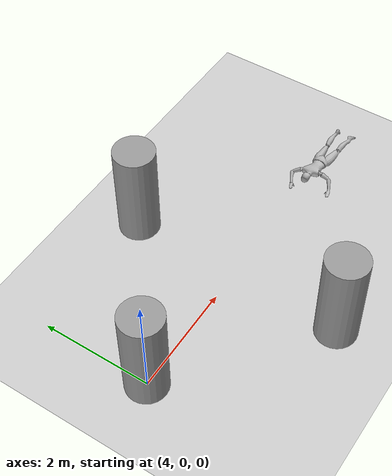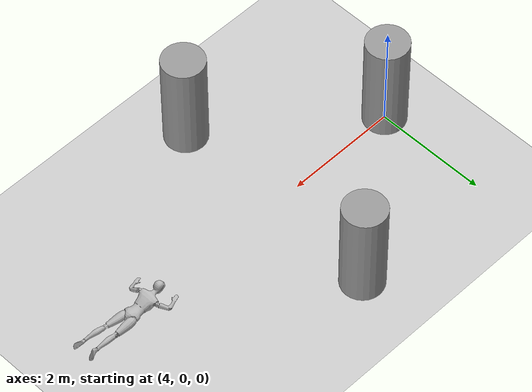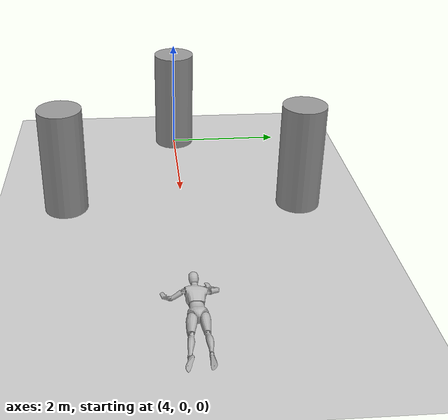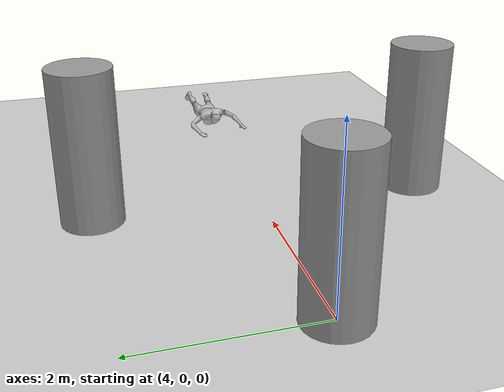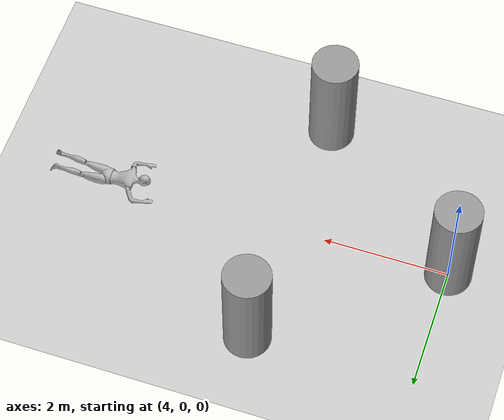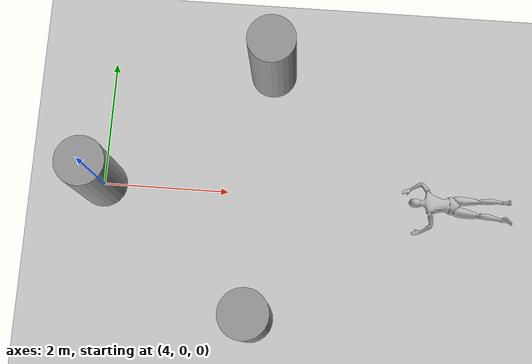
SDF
<sdf version="1.6">
 <world name="default">
  <light name="sun" type="directional">
   <pose>0 0 10 0 -0 0</pose>
   <diffuse>0.8 0.8 0.8 1</diffuse>
   <specular>0.2 0.2 0.2 1</specular>
   <attenuation>
    <range>1000</range>
    <constant>0.9</constant>
    <linear>0.01</linear>
    <quadratic>0.001</quadratic>
   </attenuation>
   <direction>-0.5 0.1 -0.9</direction>
  </light>
  <model name="ground_plane">
   <static>1</static>
   <link name="link">
    <collision name="collision">
     <geometry><plane><normal>0 0 1</normal><size>100 100</size></plane></geometry>
     <surface>
      <contact><collide_bitmask>65535</collide_bitmask></contact>
      <friction><ode><mu>100</mu><mu2>50</mu2></ode></friction>
     </surface>
    </collision>
    <visual name="visual">
     <cast_shadows>0</cast_shadows>
     <geometry><plane><normal>0 0 1</normal><size>100 100</size></plane></geometry>
     <material>
      <script><uri>file://media/materials/scripts/gazebo.material</uri><name>Gazebo/Grey</name></script>
     </material>
    </visual>
   </link>
  </model>
  <gravity>0 0 -9.8</gravity>
  <magnetic_field>6e-06 2.3e-05 -4.2e-05</magnetic_field>
  <atmosphere type="adiabatic"/>
  <physics name="default_physics" default="0" type="ode">
   <max_step_size>0.001</max_step_size>
   <real_time_factor>1</real_time_factor>
   <real_time_update_rate>1000</real_time_update_rate>
  </physics>
  <scene><ambient>0.4 0.4 0.4 1</ambient><background>0.7 0.7 0.7 1</background><shadows>1</shadows></scene>
  <audio><device>default</device></audio>
  <spherical_coordinates>
   <surface_model>EARTH_WGS84</surface_model>
   <latitude_deg>0</latitude_deg>
   <longitude_deg>0</longitude_deg>
   <elevation>0</elevation>
   <heading_deg>0</heading_deg>
  </spherical_coordinates>
  <model name="Survivor Female">
   <static>1</static>
   <link name="link">
    <collision name="collision">
     <geometry><mesh><uri>model://Survivor Female/meshes/Survivor Female.dae</uri></mesh></geometry>
    </collision>
    <visual name="visual">
     <geometry><mesh><uri>model://Survivor Female/meshes/Survivor Female.dae</uri></mesh></geometry>
    </visual>
   </link>
   <pose>9.7 0 0 0 0 -1.5561</pose>
  </model>
  <model name="unit_cylinder_clone_0_clone_clone">
   <pose>6.60387 2 0.920834 0 0 -0.000766</pose>
   <link name="link">
    <inertial>
     <mass>1</mass>
     <inertia><ixx>0.145833</ixx><ixy>0</ixy><ixz>0</ixz><iyy>0.145833</iyy><iyz>0</iyz><izz>0.125</izz></inertia>
    </inertial>
    <collision name="collision">
     <geometry><cylinder><radius>0.369487</radius><length>1.84167</length></cylinder></geometry>
    </collision>
    <visual name="visual">
     <geometry><cylinder><radius>0.369487</radius><length>1.84167</length></cylinder></geometry>
     <material>
      <script><name>Gazebo/Grey</name><uri>file://media/materials/scripts/gazebo.material</uri></script>
     </material>
    </visual>
   </link>
  </model>
  <model name="unit_cylinder_clone_0_clone_clone_0">
   <pose>6.5 -2 0.920833 0 0 -0.000794</pose>
   <link name="link">
    <inertial>
     <mass>1</mass>
     <inertia><ixx>0.145833</ixx><ixy>0</ixy><ixz>0</ixz><iyy>0.145833</iyy><iyz>0</iyz><izz>0.125</izz></inertia>
    </inertial>
    <collision name="collision">
     <geometry><cylinder><radius>0.369487</radius><length>1.84167</length></cylinder></geometry>
    </collision>
    <visual name="visual">
     <geometry><cylinder><radius>0.369487</radius><length>1.84167</length></cylinder></geometry>
     <material>
      <script><name>Gazebo/Grey</name><uri>file://media/materials/scripts/gazebo.material</uri></script>
     </material>
    </visual>
   </link>
  </model>
  <model name="unit_cylinder_clone_0_clone_clone_0_clone">
   <pose>4 0 0.920835 0 0 -0.000804</pose>
   <link name="link">
    <inertial>
     <mass>1</mass>
     <inertia><ixx>0.145833</ixx><ixy>0</ixy><ixz>0</ixz><iyy>0.145833</iyy><iyz>0</iyz><izz>0.125</izz></inertia>
    </inertial>
    <collision name="collision">
     <geometry><cylinder><radius>0.369487</radius><length>1.84167</length></cylinder></geometry>
    </collision>
    <visual name="visual">
     <geometry><cylinder><radius>0.369487</radius><length>1.84167</length></cylinder></geometry>
     <material>
      <script><name>Gazebo/Grey</name><uri>file://media/materials/scripts/gazebo.material</uri></script>
     </material>
    </visual>
   </link>
  </model>
 </world>
</sdf>
